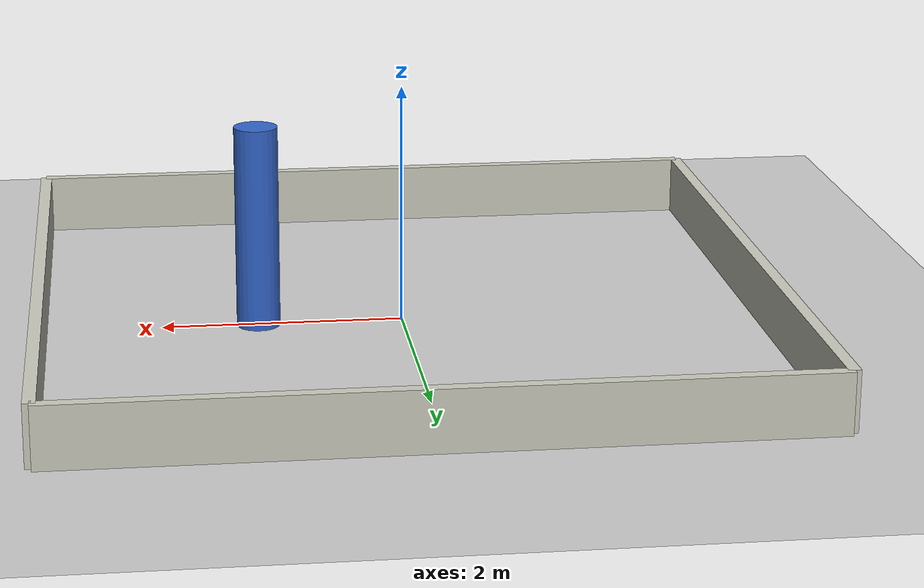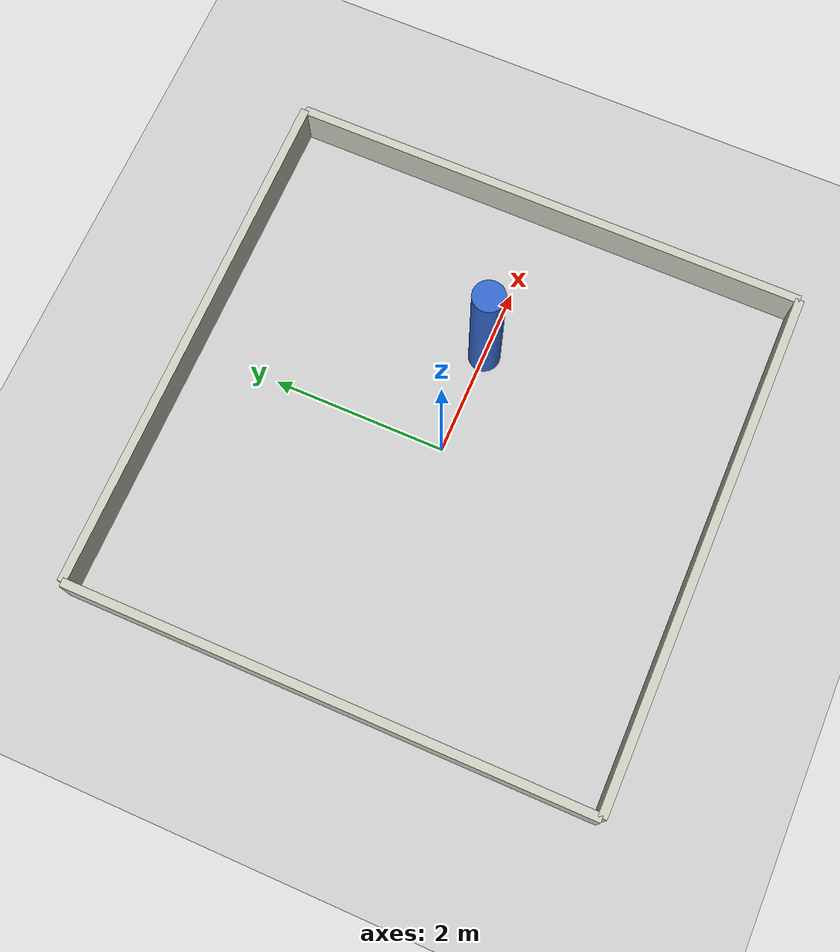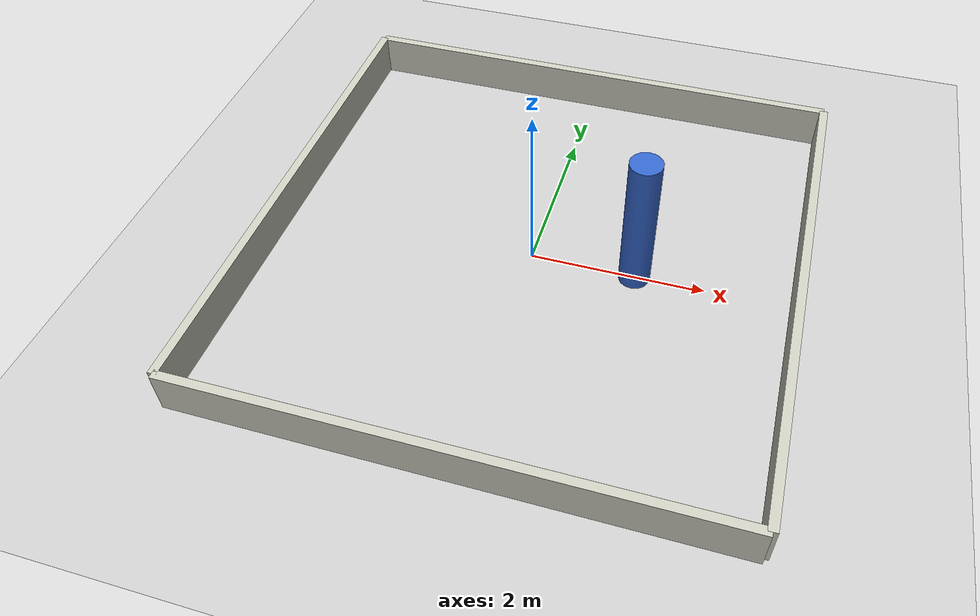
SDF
<?xml version="1.0"?>
<!-- Habitación sin muebles: el robot no encuentra mesa y se queda quieto -->
<sdf version="1.6">
  <world name="emotion_world">
    <include><uri>model://sun</uri></include>
    <include><uri>model://ground_plane</uri></include>
    <physics type="ode">
      <real_time_update_rate>1000.0</real_time_update_rate>
      <max_step_size>0.001</max_step_size>
    </physics>

    <model name="room">
      <static>true</static>
      <pose>0 0 0 0 0 0</pose>
      <link name="n">
        <pose>0 3 0.25 0 0 0</pose>
        <collision name="c"><geometry><box><size>6 0.1 0.5</size></box></geometry></collision>
        <visual name="v"><geometry><box><size>6 0.1 0.5</size></box></geometry>
          <material><ambient>0.8 0.8 0.75 1</ambient><diffuse>0.8 0.8 0.75 1</diffuse></material></visual>
      </link>
      <link name="s">
        <pose>0 -3 0.25 0 0 0</pose>
        <collision name="c"><geometry><box><size>6 0.1 0.5</size></box></geometry></collision>
        <visual name="v"><geometry><box><size>6 0.1 0.5</size></box></geometry>
          <material><ambient>0.8 0.8 0.75 1</ambient><diffuse>0.8 0.8 0.75 1</diffuse></material></visual>
      </link>
      <link name="e">
        <pose>3 0 0.25 0 0 0</pose>
        <collision name="c"><geometry><box><size>0.1 6 0.5</size></box></geometry></collision>
        <visual name="v"><geometry><box><size>0.1 6 0.5</size></box></geometry>
          <material><ambient>0.8 0.8 0.75 1</ambient><diffuse>0.8 0.8 0.75 1</diffuse></material></visual>
      </link>
      <link name="w">
        <pose>-3 0 0.25 0 0 0</pose>
        <collision name="c"><geometry><box><size>0.1 6 0.5</size></box></geometry></collision>
        <visual name="v"><geometry><box><size>0.1 6 0.5</size></box></geometry>
          <material><ambient>0.8 0.8 0.75 1</ambient><diffuse>0.8 0.8 0.75 1</diffuse></material></visual>
      </link>
    </model>

    <model name="person">
      <static>true</static>
      <pose>1.2 0 0 0 0 0</pose>
      <link name="body">
        <pose>0 0 0.85 0 0 0</pose>
        <collision name="c"><geometry><cylinder><radius>0.18</radius><length>1.7</length></cylinder></geometry></collision>
        <visual name="v"><geometry><cylinder><radius>0.18</radius><length>1.7</length></cylinder></geometry>
          <material><ambient>0.2 0.4 0.8 1</ambient><diffuse>0.2 0.4 0.8 1</diffuse></material></visual>
      </link>
    </model>
  </world>
</sdf>
